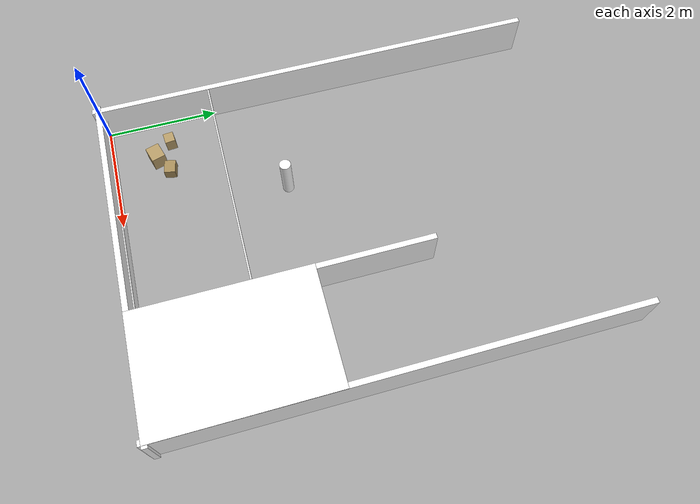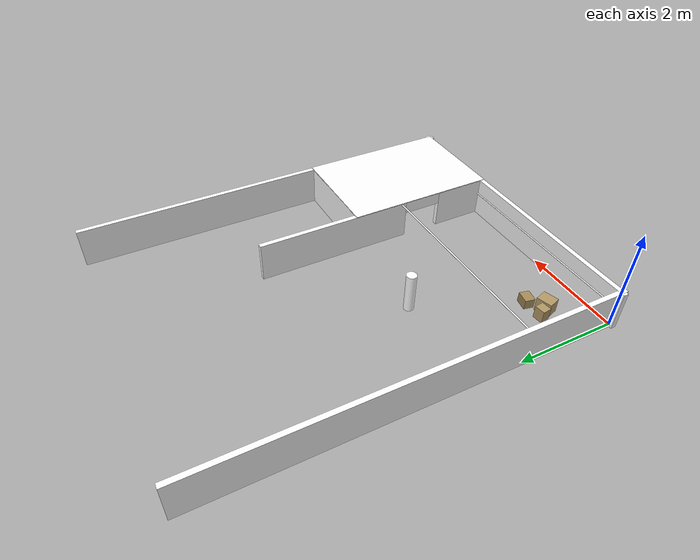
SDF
<sdf version="1.9">
 <world name="basement">
  <model name="wall_south">
   <static>true</static>
   <pose>3 0 0.4 0 0 0</pose>
   <link name="link">
    <collision name="col"><geometry><box><size>6.2 0.1 0.8</size></box></geometry></collision>
    <visual name="vis">
     <geometry><mesh><uri>model://basement_surfaces/meshes/wall_south.dae</uri></mesh></geometry>
     <material>
      <ambient>1.0 1.0 1.0 1</ambient>
      <diffuse>1.0 1.0 1.0 1</diffuse>
      <specular>0.05 0.05 0.05 1</specular>
      <pbr>
       <metal>
        <albedo_map>__TEXTURES_DIR__/brick.png</albedo_map>
        <normal_map>__TEXTURES_DIR__/brick_normal.png</normal_map>
        <roughness_map>__TEXTURES_DIR__/brick_roughness.png</roughness_map>
        <metalness_map>__TEXTURES_DIR__/brick_metalness.png</metalness_map>
       </metal>
      </pbr>
     </material>
    </visual>
   </link>
  </model>
  <model name="wall_west">
   <static>true</static>
   <pose>0 4 0.4 0 0 0</pose>
   <link name="link">
    <collision name="col"><geometry><box><size>0.1 8.2 0.8</size></box></geometry></collision>
    <visual name="vis">
     <geometry><mesh><uri>model://basement_surfaces/meshes/wall_west.dae</uri></mesh></geometry>
     <material>
      <ambient>1.0 1.0 1.0 1</ambient>
      <diffuse>1.0 1.0 1.0 1</diffuse>
      <specular>0.05 0.05 0.05 1</specular>
      <pbr>
       <metal>
        <albedo_map>__TEXTURES_DIR__/brick.png</albedo_map>
        <normal_map>__TEXTURES_DIR__/brick_normal.png</normal_map>
        <roughness_map>__TEXTURES_DIR__/brick_roughness.png</roughness_map>
        <metalness_map>__TEXTURES_DIR__/brick_metalness.png</metalness_map>
       </metal>
      </pbr>
     </material>
    </visual>
   </link>
  </model>
  <model name="wall_east">
   <static>true</static>
   <pose>6 4 0.4 0 0 0</pose>
   <link name="link">
    <collision name="col"><geometry><box><size>0.1 8.2 0.8</size></box></geometry></collision>
    <visual name="vis">
     <geometry><mesh><uri>model://basement_surfaces/meshes/wall_east.dae</uri></mesh></geometry>
     <material>
      <ambient>1.0 1.0 1.0 1</ambient>
      <diffuse>1.0 1.0 1.0 1</diffuse>
      <specular>0.05 0.05 0.05 1</specular>
      <pbr>
       <metal>
        <albedo_map>__TEXTURES_DIR__/brick.png</albedo_map>
        <normal_map>__TEXTURES_DIR__/brick_normal.png</normal_map>
        <roughness_map>__TEXTURES_DIR__/brick_roughness.png</roughness_map>
        <metalness_map>__TEXTURES_DIR__/brick_metalness.png</metalness_map>
       </metal>
      </pbr>
     </material>
    </visual>
   </link>
  </model>
  <model name="wall_divide_lower">
   <static>true</static>
   <pose>4 0.55 0.4 0 0 0</pose>
   <link name="link">
    <collision name="col"><geometry><box><size>0.1 1.1 0.8</size></box></geometry></collision>
    <visual name="vis">
     <geometry><mesh><uri>model://basement_surfaces/meshes/wall_divide_lower.dae</uri></mesh></geometry>
     <material>
      <ambient>1.0 1.0 1.0 1</ambient>
      <diffuse>1.0 1.0 1.0 1</diffuse>
      <specular>0.05 0.05 0.05 1</specular>
      <pbr>
       <metal>
        <albedo_map>__TEXTURES_DIR__/brick.png</albedo_map>
        <normal_map>__TEXTURES_DIR__/brick_normal.png</normal_map>
        <roughness_map>__TEXTURES_DIR__/brick_roughness.png</roughness_map>
        <metalness_map>__TEXTURES_DIR__/brick_metalness.png</metalness_map>
       </metal>
      </pbr>
     </material>
    </visual>
   </link>
  </model>
  <model name="wall_divide_arch_r2">
   <static>true</static>
   <pose>4 1.5 0.675 0 0 0</pose>
   <link name="link">
    <collision name="col"><geometry><box><size>0.1 0.8 0.25</size></box></geometry></collision>
    <visual name="vis">
     <geometry><mesh><uri>model://basement_surfaces/meshes/wall_divide_arch_r2.dae</uri></mesh></geometry>
     <material>
      <ambient>1.0 1.0 1.0 1</ambient>
      <diffuse>1.0 1.0 1.0 1</diffuse>
      <specular>0.05 0.05 0.05 1</specular>
      <pbr>
       <metal>
        <albedo_map>__TEXTURES_DIR__/brick.png</albedo_map>
        <normal_map>__TEXTURES_DIR__/brick_normal.png</normal_map>
        <roughness_map>__TEXTURES_DIR__/brick_roughness.png</roughness_map>
        <metalness_map>__TEXTURES_DIR__/brick_metalness.png</metalness_map>
       </metal>
      </pbr>
     </material>
    </visual>
   </link>
  </model>
  <model name="wall_divide_mid">
   <static>true</static>
   <pose>4 3.5 0.4 0 0 0</pose>
   <link name="link">
    <collision name="col"><geometry><box><size>0.1 3.2 0.8</size></box></geometry></collision>
    <visual name="vis">
     <geometry><mesh><uri>model://basement_surfaces/meshes/wall_divide_mid.dae</uri></mesh></geometry>
     <material>
      <ambient>1.0 1.0 1.0 1</ambient>
      <diffuse>1.0 1.0 1.0 1</diffuse>
      <specular>0.05 0.05 0.05 1</specular>
      <pbr>
       <metal>
        <albedo_map>__TEXTURES_DIR__/brick.png</albedo_map>
        <normal_map>__TEXTURES_DIR__/brick_normal.png</normal_map>
        <roughness_map>__TEXTURES_DIR__/brick_roughness.png</roughness_map>
        <metalness_map>__TEXTURES_DIR__/brick_metalness.png</metalness_map>
       </metal>
      </pbr>
     </material>
    </visual>
   </link>
  </model>
  <model name="wall_r2_r3_divide">
   <static>true</static>
   <pose>5 3 0.4 0 0 0</pose>
   <link name="link">
    <collision name="col"><geometry><box><size>2.0 0.1 0.8</size></box></geometry></collision>
    <visual name="vis">
     <geometry><mesh><uri>model://basement_surfaces/meshes/wall_r2_r3_divide.dae</uri></mesh></geometry>
     <material>
      <ambient>1.0 1.0 1.0 1</ambient>
      <diffuse>1.0 1.0 1.0 1</diffuse>
      <specular>0.05 0.05 0.05 1</specular>
      <pbr>
       <metal>
        <albedo_map>__TEXTURES_DIR__/brick.png</albedo_map>
        <normal_map>__TEXTURES_DIR__/brick_normal.png</normal_map>
        <roughness_map>__TEXTURES_DIR__/brick_roughness.png</roughness_map>
        <metalness_map>__TEXTURES_DIR__/brick_metalness.png</metalness_map>
       </metal>
      </pbr>
     </material>
    </visual>
   </link>
  </model>
  <model name="cardboard_box_1">
   <static>true</static>
   <pose>0.8 0.8 0.15 0 0 0.3</pose>
   <link name="link">
    <collision name="col"><geometry><box><size>0.3 0.25 0.3</size></box></geometry></collision>
    <visual name="vis">
     <geometry><box><size>0.3 0.25 0.3</size></box></geometry>
     <material>
      <ambient>1.0 1.0 1.0 1</ambient>
      <diffuse>0.70 0.60 0.40 1</diffuse>
      <specular>0.05 0.05 0.05 1</specular>
      <pbr>
       <metal>
        <albedo_map>__TEXTURES_DIR__/cardboard.png</albedo_map>
        <normal_map>__TEXTURES_DIR__/cardboard_normal.png</normal_map>
        <roughness_map>__TEXTURES_DIR__/cardboard_roughness.png</roughness_map>
        <metalness_map>__TEXTURES_DIR__/cardboard_metalness.png</metalness_map>
       </metal>
      </pbr>
     </material>
    </visual>
   </link>
  </model>
  <model name="cardboard_box_2">
   <static>true</static>
   <pose>1.1 1.0 0.1 0 0 -0.2</pose>
   <link name="link">
    <collision name="col"><geometry><box><size>0.25 0.2 0.2</size></box></geometry></collision>
    <visual name="vis">
     <geometry><box><size>0.25 0.2 0.2</size></box></geometry>
     <material>
      <ambient>1.0 1.0 1.0 1</ambient>
      <diffuse>0.65 0.55 0.35 1</diffuse>
      <specular>0.05 0.05 0.05 1</specular>
      <pbr>
       <metal>
        <albedo_map>__TEXTURES_DIR__/cardboard.png</albedo_map>
        <normal_map>__TEXTURES_DIR__/cardboard_normal.png</normal_map>
        <roughness_map>__TEXTURES_DIR__/cardboard_roughness.png</roughness_map>
        <metalness_map>__TEXTURES_DIR__/cardboard_metalness.png</metalness_map>
       </metal>
      </pbr>
     </material>
    </visual>
   </link>
  </model>
  <model name="cardboard_box_3">
   <static>true</static>
   <pose>0.6 1.1 0.25 0 0 0.1</pose>
   <link name="link">
    <collision name="col"><geometry><box><size>0.2 0.18 0.25</size></box></geometry></collision>
    <visual name="vis">
     <geometry><box><size>0.2 0.18 0.25</size></box></geometry>
     <material>
      <ambient>1.0 1.0 1.0 1</ambient>
      <diffuse>0.70 0.60 0.40 1</diffuse>
      <specular>0.05 0.05 0.05 1</specular>
      <pbr>
       <metal>
        <albedo_map>__TEXTURES_DIR__/cardboard.png</albedo_map>
        <normal_map>__TEXTURES_DIR__/cardboard_normal.png</normal_map>
        <roughness_map>__TEXTURES_DIR__/cardboard_roughness.png</roughness_map>
        <metalness_map>__TEXTURES_DIR__/cardboard_metalness.png</metalness_map>
       </metal>
      </pbr>
     </material>
    </visual>
   </link>
  </model>
  <model name="conduit_cross_2">
   <static>true</static>
   <pose>2.0 2.0 0.78 0 1.5708 0</pose>
   <link name="link">
    <visual name="vis">
     <geometry><cylinder><radius>0.015</radius><length>4.0</length></cylinder></geometry>
     <material>
      <ambient>1.0 1.0 1.0 1</ambient>
      <diffuse>1.0 1.0 1.0 1</diffuse>
      <specular>1.0 1.0 1.0 1</specular>
      <pbr>
       <metal>
        <albedo_map>__TEXTURES_DIR__/paint_yellow.png</albedo_map>
        <roughness_map>__TEXTURES_DIR__/metal_painted_roughness.png</roughness_map>
        <metalness_map>__TEXTURES_DIR__/metal_painted_metalness.png</metalness_map>
       </metal>
      </pbr>
     </material>
    </visual>
    <collision name="col">
     <geometry><cylinder><radius>0.015</radius><length>4.0</length></cylinder></geometry>
    </collision>
   </link>
  </model>
  <model name="water_pipe_south">
   <static>true</static>
   <pose>2.0 0.08 0.5 0 1.5708 0</pose>
   <link name="link">
    <visual name="vis">
     <geometry><cylinder><radius>0.0125</radius><length>4.0</length></cylinder></geometry>
     <material>
      <ambient>1.0 1.0 1.0 1</ambient>
      <diffuse>1.0 1.0 1.0 1</diffuse>
      <specular>1.0 1.0 1.0 1</specular>
      <pbr>
       <metal>
        <albedo_map>__TEXTURES_DIR__/paint_blue.png</albedo_map>
        <roughness_map>__TEXTURES_DIR__/metal_painted_roughness.png</roughness_map>
        <metalness_map>__TEXTURES_DIR__/metal_painted_metalness.png</metalness_map>
       </metal>
      </pbr>
     </material>
    </visual>
    <collision name="col">
     <geometry><cylinder><radius>0.0125</radius><length>4.0</length></cylinder></geometry>
    </collision>
   </link>
  </model>
  <model name="pillar_1">
   <static>true</static>
   <pose>2.0 3.0 0.4 0 0 0</pose>
   <link name="link">
    <collision name="col">
     <geometry><cylinder><radius>0.1</radius><length>0.8</length></cylinder></geometry>
    </collision>
    <visual name="vis">
     <geometry><mesh><uri>model://basement_surfaces/meshes/pillar_1.dae</uri></mesh></geometry>
     <material>
      <ambient>1.0 1.0 1.0 1</ambient>
      <diffuse>1.0 1.0 1.0 1</diffuse>
      <specular>0.05 0.05 0.05 1</specular>
      <pbr>
       <metal>
        <albedo_map>__TEXTURES_DIR__/brick.png</albedo_map>
        <normal_map>__TEXTURES_DIR__/brick_normal.png</normal_map>
        <roughness_map>__TEXTURES_DIR__/brick_roughness.png</roughness_map>
        <metalness_map>__TEXTURES_DIR__/brick_metalness.png</metalness_map>
       </metal>
      </pbr>
     </material>
    </visual>
   </link>
  </model>
  <model name="ceiling_r2">
   <static>true</static>
   <pose>5 1.5 0.8 0 0 0</pose>
   <link name="link">
    <collision name="col"><geometry><box><size>2.1 3.1 0.02</size></box></geometry></collision>
    <visual name="vis">
     <geometry><mesh><uri>model://basement_surfaces/meshes/ceiling_r2.dae</uri></mesh></geometry>
     <material>
      <ambient>1.0 1.0 1.0 1</ambient>
      <diffuse>1.0 1.0 1.0 1</diffuse>
      <specular>0.1 0.1 0.1 1</specular>
      <pbr>
       <metal>
        <albedo_map>__TEXTURES_DIR__/wood_planks.png</albedo_map>
        <normal_map>__TEXTURES_DIR__/wood_planks_normal.png</normal_map>
        <roughness_map>__TEXTURES_DIR__/wood_planks_roughness.png</roughness_map>
        <metalness_map>__TEXTURES_DIR__/wood_planks_metalness.png</metalness_map>
       </metal>
      </pbr>
     </material>
    </visual>
   </link>
  </model>
 </world>
</sdf>
